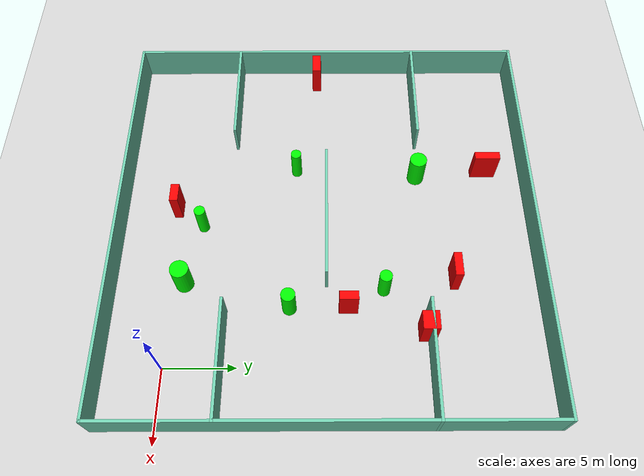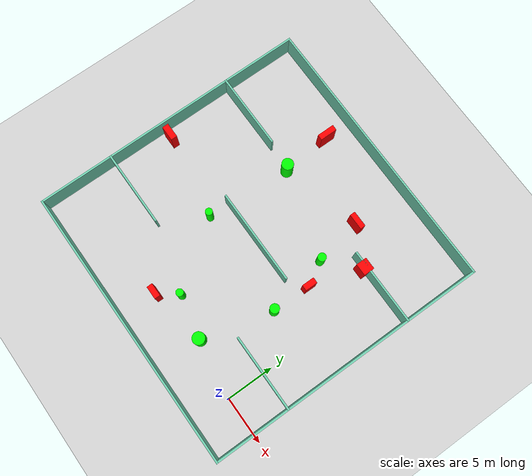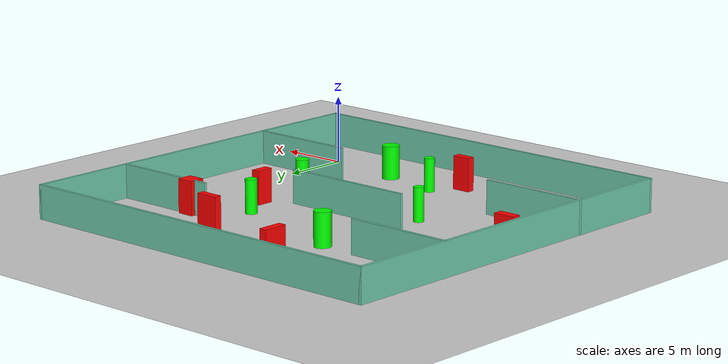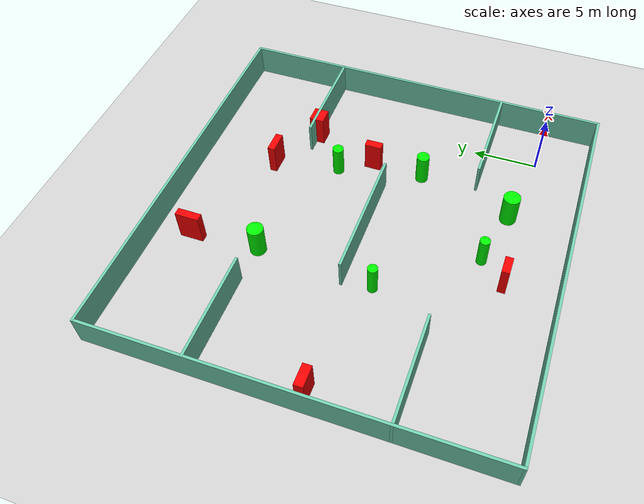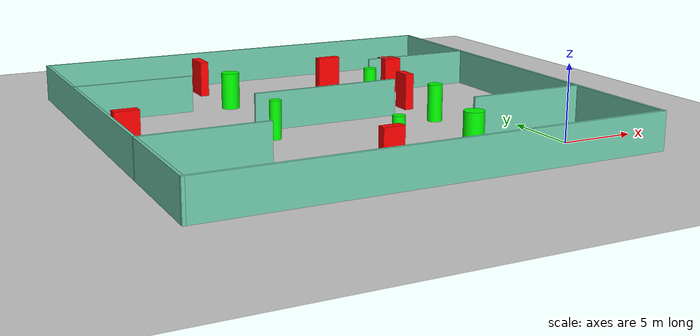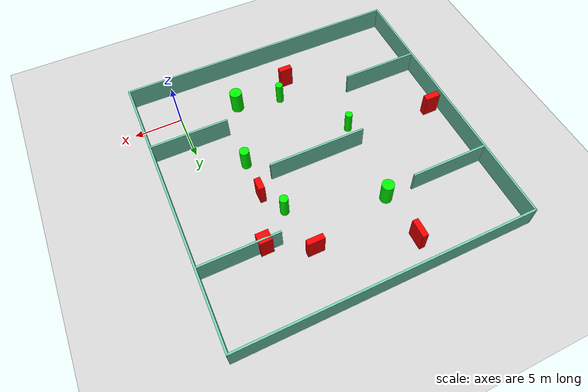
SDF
<sdf version="1.7">
 <world name="default">
  <light name="sun" type="directional">
   <pose>0 0 10 0 -0 0</pose>
   <diffuse>0.8 0.8 0.8 1</diffuse>
   <specular>0.2 0.2 0.2 1</specular>
   <attenuation>
    <range>1000</range>
    <constant>0.9</constant>
    <linear>0.01</linear>
    <quadratic>0.001</quadratic>
   </attenuation>
   <direction>-0.5 0.1 -0.9</direction>
   <spot><inner_angle>0</inner_angle><outer_angle>0</outer_angle><falloff>0</falloff></spot>
  </light>
  <model name="ground_plane">
   <static>1</static>
   <link name="link">
    <collision name="collision">
     <geometry><plane><normal>0 0 1</normal><size>100 100</size></plane></geometry>
     <surface>
      <contact><collide_bitmask>65535</collide_bitmask></contact>
      <friction><ode><mu>100</mu><mu2>50</mu2></ode></friction>
     </surface>
    </collision>
    <visual name="visual">
     <cast_shadows>0</cast_shadows>
     <geometry><plane><normal>0 0 1</normal><size>100 100</size></plane></geometry>
     <material>
      <script><uri>file://media/materials/scripts/gazebo.material</uri><name>Gazebo/Grey</name></script>
     </material>
    </visual>
   </link>
  </model>
  <gravity>0 0 -9.8</gravity>
  <magnetic_field>6e-06 2.3e-05 -4.2e-05</magnetic_field>
  <atmosphere type="adiabatic"/>
  <physics type="ode">
   <max_step_size>0.001</max_step_size>
   <real_time_factor>1</real_time_factor>
   <real_time_update_rate>1000</real_time_update_rate>
  </physics>
  <scene><ambient>0.4 0.4 0.4 1</ambient><background>0.7 0.7 0.7 1</background><shadows>1</shadows></scene>
  <spherical_coordinates>
   <surface_model>EARTH_WGS84</surface_model>
   <latitude_deg>0</latitude_deg>
   <longitude_deg>0</longitude_deg>
   <elevation>0</elevation>
   <heading_deg>0</heading_deg>
  </spherical_coordinates>
  <model name="my_base_walls">
   <link name="Wall_10">
    <collision name="Wall_10_Collision">
     <geometry><box><size>8.2 0.2 2.5</size></box></geometry>
     <pose>0 0 1.25 0 -0 0</pose>
    </collision>
    <visual name="Wall_10_Visual">
     <pose>0 0 1.25 0 -0 0</pose>
     <geometry><box><size>8.2 0.2 2.5</size></box></geometry>
     <material>
      <script><uri>file://media/materials/scripts/gazebo.material</uri><name>Gazebo/Grey</name></script>
      <ambient>0.435294 0.796078 0.67451 1</ambient>
     </material>
     <meta><layer>0</layer></meta>
    </visual>
    <pose>-11 -7 0 0 -0 0</pose>
   </link>
   <link name="Wall_12">
    <collision name="Wall_12_Collision">
     <geometry><box><size>8.2 0.2 2.5</size></box></geometry>
     <pose>0 0 1.25 0 -0 0</pose>
    </collision>
    <visual name="Wall_12_Visual">
     <pose>0 0 1.25 0 -0 0</pose>
     <geometry><box><size>8.2 0.2 2.5</size></box></geometry>
     <material>
      <script><uri>file://media/materials/scripts/gazebo.material</uri><name>Gazebo/Grey</name></script>
      <ambient>0.435294 0.796078 0.67451 1</ambient>
     </material>
     <meta><layer>0</layer></meta>
    </visual>
    <pose>-11 7 0 0 -0 0</pose>
   </link>
   <link name="Wall_14">
    <collision name="Wall_14_Collision">
     <geometry><box><size>8.2 0.2 2.5</size></box></geometry>
     <pose>0 0 1.25 0 -0 0</pose>
    </collision>
    <visual name="Wall_14_Visual">
     <pose>0 0 1.25 0 -0 0</pose>
     <geometry><box><size>8.2 0.2 2.5</size></box></geometry>
     <material>
      <script><uri>file://media/materials/scripts/gazebo.material</uri><name>Gazebo/Grey</name></script>
      <ambient>0.435294 0.796078 0.67451 1</ambient>
     </material>
     <meta><layer>0</layer></meta>
    </visual>
    <pose>11 7 0 0 -0 3.14159</pose>
   </link>
   <link name="Wall_16">
    <collision name="Wall_16_Collision">
     <geometry><box><size>10.2 0.2 2.5</size></box></geometry>
     <pose>0 0 1.25 0 -0 0</pose>
    </collision>
    <visual name="Wall_16_Visual">
     <pose>0 0 1.25 0 -0 0</pose>
     <geometry><box><size>10.2 0.2 2.5</size></box></geometry>
     <material>
      <script><uri>file://media/materials/scripts/gazebo.material</uri><name>Gazebo/Grey</name></script>
      <ambient>0.435294 0.796078 0.67451 1</ambient>
     </material>
     <meta><layer>0</layer></meta>
    </visual>
    <pose>0 0 0 0 -0 3.14159</pose>
   </link>
   <link name="Wall_2">
    <collision name="Wall_2_Collision">
     <geometry><box><size>30.2 0.2 2.5</size></box></geometry>
     <pose>0 0 1.25 0 -0 0</pose>
    </collision>
    <visual name="Wall_2_Visual">
     <pose>0 0 1.25 0 -0 0</pose>
     <geometry><box><size>30.2 0.2 2.5</size></box></geometry>
     <material>
      <script><uri>file://media/materials/scripts/gazebo.material</uri><name>Gazebo/Grey</name></script>
      <ambient>0.435294 0.796078 0.67451 1</ambient>
     </material>
     <meta><layer>0</layer></meta>
    </visual>
    <pose>0 -15 0 0 -0 3.14159</pose>
   </link>
   <link name="Wall_3">
    <collision name="Wall_3_Collision">
     <geometry><box><size>30.2 0.2 2.5</size></box></geometry>
     <pose>0 0 1.25 0 -0 0</pose>
    </collision>
    <visual name="Wall_3_Visual">
     <pose>0 0 1.25 0 -0 0</pose>
     <geometry><box><size>30.2 0.2 2.5</size></box></geometry>
     <material>
      <script><uri>file://media/materials/scripts/gazebo.material</uri><name>Gazebo/Grey</name></script>
      <ambient>0.435294 0.796078 0.67451 1</ambient>
     </material>
     <meta><layer>0</layer></meta>
    </visual>
    <pose>-15 0 0 0 -0 1.5708</pose>
   </link>
   <link name="Wall_4">
    <collision name="Wall_4_Collision">
     <geometry><box><size>30.2 0.2 2.5</size></box></geometry>
     <pose>0 0 1.25 0 -0 0</pose>
    </collision>
    <visual name="Wall_4_Visual">
     <pose>0 0 1.25 0 -0 0</pose>
     <geometry><box><size>30.2 0.2 2.5</size></box></geometry>
     <material>
      <script><uri>file://media/materials/scripts/gazebo.material</uri><name>Gazebo/Grey</name></script>
      <ambient>0.435294 0.796078 0.67451 1</ambient>
     </material>
     <meta><layer>0</layer></meta>
    </visual>
    <pose>0 15 0 0 -0 0</pose>
   </link>
   <link name="Wall_6">
    <collision name="Wall_6_Collision">
     <geometry><box><size>30.2 0.2 2.5</size></box></geometry>
     <pose>0 0 1.25 0 -0 0</pose>
    </collision>
    <visual name="Wall_6_Visual">
     <pose>0 0 1.25 0 -0 0</pose>
     <geometry><box><size>30.2 0.2 2.5</size></box></geometry>
     <material>
      <script><uri>file://media/materials/scripts/gazebo.material</uri><name>Gazebo/Grey</name></script>
      <ambient>0.435294 0.796078 0.67451 1</ambient>
     </material>
     <meta><layer>0</layer></meta>
    </visual>
    <pose>15 0 0 0 -0 1.5708</pose>
   </link>
   <link name="Wall_8">
    <collision name="Wall_8_Collision">
     <geometry><box><size>8.2 0.2 2.5</size></box></geometry>
     <pose>0 0 1.25 0 -0 0</pose>
    </collision>
    <visual name="Wall_8_Visual">
     <pose>0 0 1.25 0 -0 0</pose>
     <geometry><box><size>8.2 0.2 2.5</size></box></geometry>
     <material>
      <script><uri>file://media/materials/scripts/gazebo.material</uri><name>Gazebo/Grey</name></script>
      <ambient>0.435294 0.796078 0.67451 1</ambient>
     </material>
     <meta><layer>0</layer></meta>
    </visual>
    <pose>11 -7 0 0 -0 3.14159</pose>
   </link>
   <static>1</static>
   <pose>-11 11 0 0 -0 0</pose>
  </model>
  <model name="cylinder1">
   <static>1</static>
   <link name="link">
    <inertial>
     <mass>1</mass>
     <inertia><ixx>0.5</ixx><ixy>0</ixy><ixz>0</ixz><iyy>0.5</iyy><iyz>0</iyz><izz>1</izz></inertia>
    </inertial>
    <collision name="collision">
     <geometry><cylinder><radius>0.6223416647712747</radius><length>2.5</length></cylinder></geometry>
    </collision>
    <visual name="visual">
     <geometry><cylinder><radius>0.6223416647712747</radius><length>2.5</length></cylinder></geometry>
     <material>
      <ambient>0 1 0 1</ambient>
      <diffuse>0 1 0 1</diffuse>
      <specular>0.1 0.1 0.1 1</specular>
      <emissive>0 0 0 0</emissive>
     </material>
    </visual>
   </link>
   <pose>-15.12364233146426 17.873190245503416 1.25 0 0 0</pose>
  </model>
  <model name="cylinder2">
   <static>1</static>
   <link name="link">
    <inertial>
     <mass>1</mass>
     <inertia><ixx>0.5</ixx><ixy>0</ixy><ixz>0</ixz><iyy>0.5</iyy><iyz>0</iyz><izz>1</izz></inertia>
    </inertial>
    <collision name="collision">
     <geometry><cylinder><radius>0.6485892333678562</radius><length>2.5</length></cylinder></geometry>
    </collision>
    <visual name="visual">
     <geometry><cylinder><radius>0.6485892333678562</radius><length>2.5</length></cylinder></geometry>
     <material>
      <ambient>0 1 0 1</ambient>
      <diffuse>0 1 0 1</diffuse>
      <specular>0.1 0.1 0.1 1</specular>
      <emissive>0 0 0 0</emissive>
     </material>
    </visual>
   </link>
   <pose>-6.147144555857524 0.9576705000084056 1.25 0 0 0</pose>
  </model>
  <model name="cylinder3">
   <static>1</static>
   <link name="link">
    <inertial>
     <mass>1</mass>
     <inertia><ixx>0.5</ixx><ixy>0</ixy><ixz>0</ixz><iyy>0.5</iyy><iyz>0</iyz><izz>1</izz></inertia>
    </inertial>
    <collision name="collision">
     <geometry><cylinder><radius>0.38091435987068223</radius><length>2.5</length></cylinder></geometry>
    </collision>
    <visual name="visual">
     <geometry><cylinder><radius>0.38091435987068223</radius><length>2.5</length></cylinder></geometry>
     <material>
      <ambient>0 1 0 1</ambient>
      <diffuse>0 1 0 1</diffuse>
      <specular>0.1 0.1 0.1 1</specular>
      <emissive>0 0 0 0</emissive>
     </material>
    </visual>
   </link>
   <pose>-15.663541855875957 8.731848345719477 1.25 0 0 0</pose>
  </model>
  <model name="cylinder4">
   <static>1</static>
   <link name="link">
    <inertial>
     <mass>1</mass>
     <inertia><ixx>0.5</ixx><ixy>0</ixy><ixz>0</ixz><iyy>0.5</iyy><iyz>0</iyz><izz>1</izz></inertia>
    </inertial>
    <collision name="collision">
     <geometry><cylinder><radius>0.4957494150832633</radius><length>2.5</length></cylinder></geometry>
    </collision>
    <visual name="visual">
     <geometry><cylinder><radius>0.4957494150832633</radius><length>2.5</length></cylinder></geometry>
     <material>
      <ambient>0 1 0 1</ambient>
      <diffuse>0 1 0 1</diffuse>
      <specular>0.1 0.1 0.1 1</specular>
      <emissive>0 0 0 0</emissive>
     </material>
    </visual>
   </link>
   <pose>-4.246319713707553 8.40855980372597 1.25 0 0 0</pose>
  </model>
  <model name="cylinder5">
   <static>1</static>
   <link name="link">
    <inertial>
     <mass>1</mass>
     <inertia><ixx>0.5</ixx><ixy>0</ixy><ixz>0</ixz><iyy>0.5</iyy><iyz>0</iyz><izz>1</izz></inertia>
    </inertial>
    <collision name="collision">
     <geometry><cylinder><radius>0.4387730891818451</radius><length>2.5</length></cylinder></geometry>
    </collision>
    <visual name="visual">
     <geometry><cylinder><radius>0.4387730891818451</radius><length>2.5</length></cylinder></geometry>
     <material>
      <ambient>0 1 0 1</ambient>
      <diffuse>0 1 0 1</diffuse>
      <specular>0.1 0.1 0.1 1</specular>
      <emissive>0 0 0 0</emissive>
     </material>
    </visual>
   </link>
   <pose>-5.605637945013026 15.020969088736688 1.25 0 0 0</pose>
  </model>
  <model name="cylinder6">
   <static>1</static>
   <link name="link">
    <inertial>
     <mass>1</mass>
     <inertia><ixx>0.5</ixx><ixy>0</ixy><ixz>0</ixz><iyy>0.5</iyy><iyz>0</iyz><izz>1</izz></inertia>
    </inertial>
    <collision name="collision">
     <geometry><cylinder><radius>0.3919718128339844</radius><length>2.5</length></cylinder></geometry>
    </collision>
    <visual name="visual">
     <geometry><cylinder><radius>0.3919718128339844</radius><length>2.5</length></cylinder></geometry>
     <material>
      <ambient>0 1 0 1</ambient>
      <diffuse>0 1 0 1</diffuse>
      <specular>0.1 0.1 0.1 1</specular>
      <emissive>0 0 0 0</emissive>
     </material>
    </visual>
   </link>
   <pose>-10.750814124378135 1.9400459500474039 1.25 0 0 0</pose>
  </model>
  <model name="box1">
   <static>1</static>
   <link name="link">
    <inertial>
     <mass>1</mass>
     <inertia><ixx>0.083</ixx><ixy>0</ixy><ixz>0</ixz><iyy>0.083</iyy><iyz>0</iyz><izz>0.083</izz></inertia>
    </inertial>
    <collision name="collision">
     <geometry><box><size>1.390176977856908 0.6048610906494147 2.5</size></box></geometry>
    </collision>
    <visual name="visual">
     <geometry><box><size>1.390176977856908 0.6048610906494147 2.5</size></box></geometry>
     <material>
      <ambient>1 0 0 1</ambient>
      <diffuse>1 0 0 1</diffuse>
      <specular>0.1 0.1 0.1 1</specular>
      <emissive>0 0 0 0</emissive>
     </material>
    </visual>
    <sensor name="my_contact" type="contact">
     <contact><collision>box_collision</collision><topic>__default_topic__</topic></contact>
    </sensor>
   </link>
   <pose>-12.309336647373655 -0.020485252893341244 1.25 0 0 0</pose>
  </model>
  <model name="box2">
   <static>1</static>
   <link name="link">
    <inertial>
     <mass>1</mass>
     <inertia><ixx>0.083</ixx><ixy>0</ixy><ixz>0</ixz><iyy>0.083</iyy><iyz>0</iyz><izz>0.083</izz></inertia>
    </inertial>
    <collision name="collision">
     <geometry><box><size>0.5942816139599814 1.8520729180062925 2.5</size></box></geometry>
    </collision>
    <visual name="visual">
     <geometry><box><size>0.5942816139599814 1.8520729180062925 2.5</size></box></geometry>
     <material>
      <ambient>1 0 0 1</ambient>
      <diffuse>1 0 0 1</diffuse>
      <specular>0.1 0.1 0.1 1</specular>
      <emissive>0 0 0 0</emissive>
     </material>
    </visual>
    <sensor name="my_contact" type="contact">
     <contact><collision>box_collision</collision><topic>__default_topic__</topic></contact>
    </sensor>
   </link>
   <pose>-15.501504584327343 23.049616030320472 1.25 0 0 0</pose>
  </model>
  <model name="box3">
   <static>1</static>
   <link name="link">
    <inertial>
     <mass>1</mass>
     <inertia><ixx>0.083</ixx><ixy>0</ixy><ixz>0</ixz><iyy>0.083</iyy><iyz>0</iyz><izz>0.083</izz></inertia>
    </inertial>
    <collision name="collision">
     <geometry><box><size>0.6204052554091091 1.3192605584035058 2.5</size></box></geometry>
    </collision>
    <visual name="visual">
     <geometry><box><size>0.6204052554091091 1.3192605584035058 2.5</size></box></geometry>
     <material>
      <ambient>1 0 0 1</ambient>
      <diffuse>1 0 0 1</diffuse>
      <specular>0.1 0.1 0.1 1</specular>
      <emissive>0 0 0 0</emissive>
     </material>
    </visual>
    <sensor name="my_contact" type="contact">
     <contact><collision>box_collision</collision><topic>__default_topic__</topic></contact>
    </sensor>
   </link>
   <pose>-4.194546625288492 12.499023438250447 1.25 0 0 0</pose>
  </model>
  <model name="box4">
   <static>1</static>
   <link name="link">
    <inertial>
     <mass>1</mass>
     <inertia><ixx>0.083</ixx><ixy>0</ixy><ixz>0</ixz><iyy>0.083</iyy><iyz>0</iyz><izz>0.083</izz></inertia>
    </inertial>
    <collision name="collision">
     <geometry><box><size>1.2774153819215264 1.1482563194353923 2.5</size></box></geometry>
    </collision>
    <visual name="visual">
     <geometry><box><size>1.2774153819215264 1.1482563194353923 2.5</size></box></geometry>
     <material>
      <ambient>1 0 0 1</ambient>
      <diffuse>1 0 0 1</diffuse>
      <specular>0.1 0.1 0.1 1</specular>
      <emissive>0 0 0 0</emissive>
     </material>
    </visual>
    <sensor name="my_contact" type="contact">
     <contact><collision>box_collision</collision><topic>__default_topic__</topic></contact>
    </sensor>
   </link>
   <pose>-2.460129972917997 17.84255820873501 1.25 0 0 0</pose>
  </model>
  <model name="box5">
   <static>1</static>
   <link name="link">
    <inertial>
     <mass>1</mass>
     <inertia><ixx>0.083</ixx><ixy>0</ixy><ixz>0</ixz><iyy>0.083</iyy><iyz>0</iyz><izz>0.083</izz></inertia>
    </inertial>
    <collision name="collision">
     <geometry><box><size>1.6071410444724632 0.6809158371628777 2.5</size></box></geometry>
    </collision>
    <visual name="visual">
     <geometry><box><size>1.6071410444724632 0.6809158371628777 2.5</size></box></geometry>
     <material>
      <ambient>1 0 0 1</ambient>
      <diffuse>1 0 0 1</diffuse>
      <specular>0.1 0.1 0.1 1</specular>
      <emissive>0 0 0 0</emissive>
     </material>
    </visual>
    <sensor name="my_contact" type="contact">
     <contact><collision>box_collision</collision><topic>__default_topic__</topic></contact>
    </sensor>
   </link>
   <pose>-24.7521932410909 10.234421546503466 1.25 0 0 0</pose>
  </model>
  <model name="box6">
   <static>1</static>
   <link name="link">
    <inertial>
     <mass>1</mass>
     <inertia><ixx>0.083</ixx><ixy>0</ixy><ixz>0</ixz><iyy>0.083</iyy><iyz>0</iyz><izz>0.083</izz></inertia>
    </inertial>
    <collision name="collision">
     <geometry><box><size>1.695589444247748 0.5664593080912617 2.5</size></box></geometry>
    </collision>
    <visual name="visual">
     <geometry><box><size>1.695589444247748 0.5664593080912617 2.5</size></box></geometry>
     <material>
      <ambient>1 0 0 1</ambient>
      <diffuse>1 0 0 1</diffuse>
      <specular>0.1 0.1 0.1 1</specular>
      <emissive>0 0 0 0</emissive>
     </material>
    </visual>
    <sensor name="my_contact" type="contact">
     <contact><collision>box_collision</collision><topic>__default_topic__</topic></contact>
    </sensor>
   </link>
   <pose>-6.508128721308868 20.020576347358986 1.25 0 0 0</pose>
  </model>
 </world>
</sdf>
